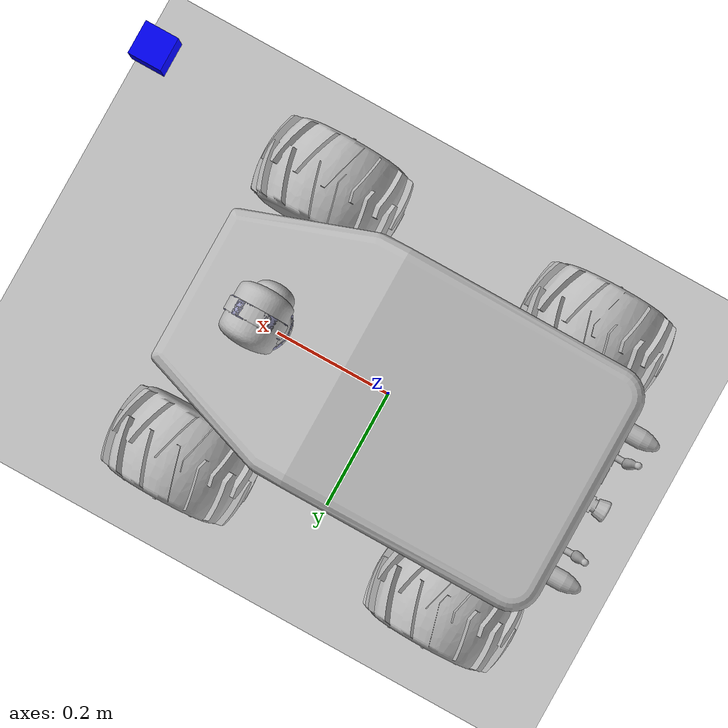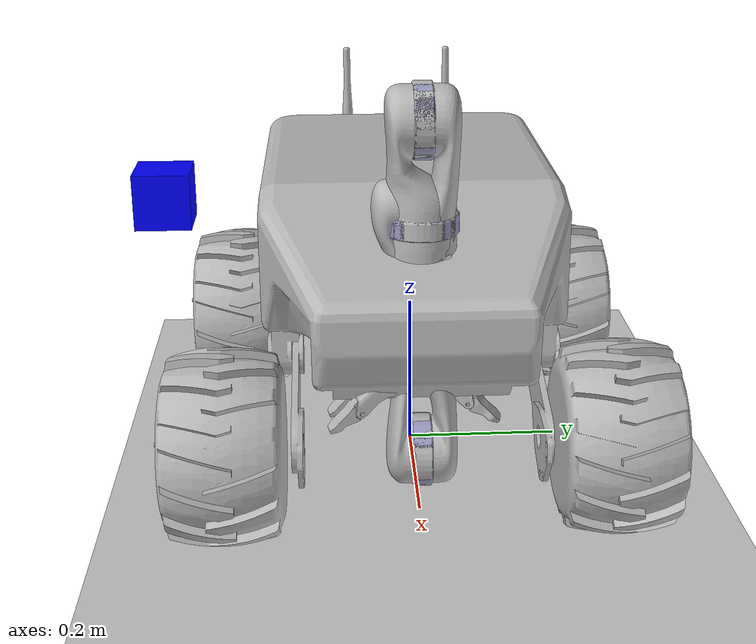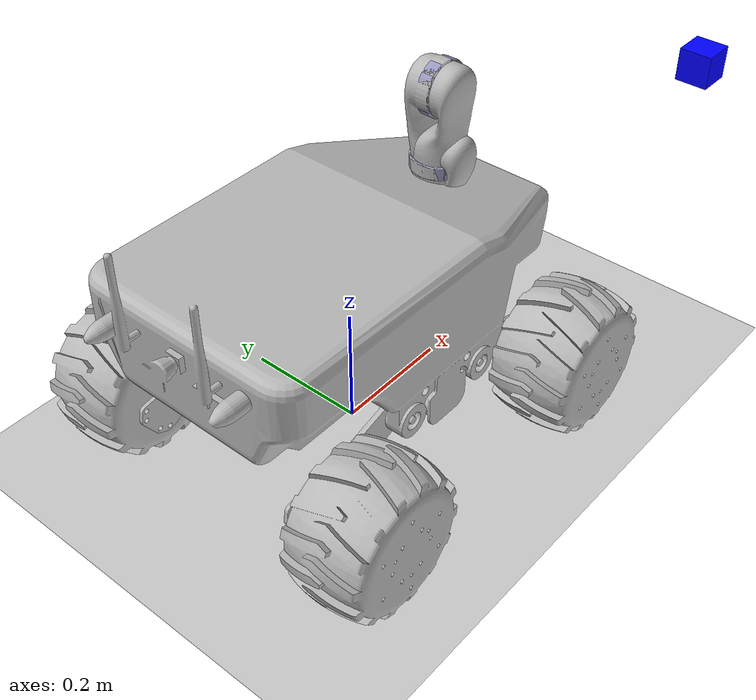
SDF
<?xml version="1.0"?>
<sdf version="1.9">
  <world name="moveit_follow_target_world">

    <!-- Physics -->
    <plugin filename="ignition-gazebo-physics-system" name="ignition::gazebo::systems::Physics">
      <engine>
        <filename>ignition-physics-dartsim-plugin</filename>
      </engine>
      <dart>
        <collision_detector>bullet</collision_detector>
      </dart>
    </plugin>
    <physics name="physics_config" type="dart">
      <max_step_size>0.001</max_step_size>
      <real_time_factor>1.0</real_time_factor>
    </physics>

    <!-- Scene -->
    <plugin filename="ignition-gazebo-scene-broadcaster-system" name="ignition::gazebo::systems::SceneBroadcaster">
    </plugin>
    <scene>
      <ambient>0.4 0.4 0.4</ambient>
      <grid>false</grid>
    </scene>

    <!-- User Commands (transform control) -->
    <plugin filename="ignition-gazebo-user-commands-system" name="ignition::gazebo::systems::UserCommands">
    </plugin>

    <!-- Illumination -->
    <light type="directional" name="sun">
      <cast_shadows>true</cast_shadows>
      <pose>0 0 10 0 0 0</pose>
      <diffuse>0.8 0.8 0.8 1</diffuse>
      <specular>0.2 0.2 0.2 1</specular>
      <attenuation>
        <range>1000</range>
        <constant>0.9</constant>
        <linear>0.01</linear>
        <quadratic>0.001</quadratic>
      </attenuation>
      <direction>-0.5 0.1 -0.9</direction>
    </light>

    <!-- Models -->
    <!-- Robot -->
    <include>
      <uri>model://lunalab_summit_xl_gen</uri>
      <pose>0 0 0 0 0 0</pose>
    </include>

    <!-- Ground -->
    <model name="ground_plane">
      <pose>0 0 0 0 0 0</pose>
      <static>true</static>
      <link name="ground_plane_link">
        <collision name="ground_plane_collision">
          <geometry>
            <plane>
              <normal>0 0 1</normal>
            </plane>
          </geometry>
        </collision>
        <visual name="ground_plane_visual">
          <geometry>
            <plane>
              <normal>0 0 1</normal>
              <size>10 10</size>
            </plane>
          </geometry>
          <material>
            <ambient>0.8 0.8 0.8 1</ambient>
            <diffuse>0.8 0.8 0.8 1</diffuse>
            <specular>0.8 0.8 0.8 1</specular>
          </material>
        </visual>
      </link>
    </model>

    <!-- Static target -->
    <model name="target">
      <static>true</static>
      <pose>0.5 -0.25 0.5 3.1415927 0 0</pose>
      <link name="target_link">
        <visual name="target_visual">
          <geometry>
            <box>
              <size>0.05 0.05 0.05</size>
            </box>
          </geometry>
          <material>
            <ambient>0 0 1 1</ambient>
            <diffuse>0 0 1 1</diffuse>
            <specular>0 0 1 1</specular>
          </material>
        </visual>
      </link>
      <!-- Pose publisher plugin, used to determine the target pose to reach -->
      <plugin filename="ignition-gazebo-pose-publisher-system" name="ignition::gazebo::systems::PosePublisher">
        <publish_nested_model_pose>true</publish_nested_model_pose>
        <publish_link_pose>false</publish_link_pose>
        <publish_collision_pose>false</publish_collision_pose>
        <publish_visual_pose>false</publish_visual_pose>
      </plugin>
    </model>
  </world>
</sdf>

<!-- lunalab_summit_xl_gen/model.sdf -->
<sdf version='1.9'>
  <model name='lunalab_summit_xl_gen'>
    <link name='robot_summit_xl_base_footprint'>
      <inertial>
        <pose>0.003747446190960834 0 0.1143260959704474 0 0 0</pose>
        <mass>25.46784</mass>
        <inertia>
          <ixx>1.417421164692676</ixx>
          <ixy>0.004</ixy>
          <ixz>-0.02206308944928192</ixz>
          <iyy>6.898533140266576</iyy>
          <iyz>0</iyz>
          <izz>6.1444862475739</izz>
        </inertia>
      </inertial>
      <collision name='robot_summit_xl_base_footprint_fixed_joint_lump__robot_summit_xl_base_link_collision'>
        <pose>0 0 0.11 0 0 0</pose>
        <geometry>
          <mesh>
            <scale>1 1 1</scale>
            <uri>meshes/summit_xl/collision/summit_xl_chassis.stl</uri>
          </mesh>
        </geometry>
      </collision>
      <collision name='robot_summit_xl_base_footprint_fixed_joint_lump__robot_j2s7s300_link_base_collision_1'>
        <pose>0.204 0 0.22 0 0 0</pose>
        <geometry>
          <mesh>
            <scale>1 1 1</scale>
            <uri>meshes/kinova/collision/base.stl</uri>
          </mesh>
        </geometry>
        <surface>
          <contact>
            <ode/>
          </contact>
          <friction>
            <ode>
              <mu>0.9</mu>
              <mu2>0.9</mu2>
            </ode>
          </friction>
        </surface>
      </collision>
      <visual name='robot_summit_xl_base_footprint_fixed_joint_lump__robot_summit_xl_base_link_visual'>
        <pose>0 0 0.11 0 0 0</pose>
        <geometry>
          <mesh>
            <scale>1 1 1</scale>
            <uri>meshes/summit_xl/visual/summit_xl_chassis.dae</uri>
          </mesh>
        </geometry>
      </visual>
      <visual name='robot_summit_xl_base_footprint_fixed_joint_lump__robot_j2s7s300_link_base_visual_1'>
        <pose>0.204 0 0.22 0 0 0</pose>
        <geometry>
          <mesh>
            <scale>1 1 1</scale>
            <uri>meshes/kinova/visual/base.dae</uri>
          </mesh>
        </geometry>
      </visual>
    </link>
    <joint name='robot_j2s7s300_joint_1' type='revolute'>
      <pose relative_to='robot_summit_xl_base_footprint'>0.204 0 0.37675 3.141592653589793 1.224646799147353e-16 3.141592653589793</pose>
      <parent>robot_summit_xl_base_footprint</parent>
      <child>robot_j2s7s300_link_1</child>
      <axis>
        <xyz>0 0 1</xyz>
        <limit>
          <lower>-6.283185307179586</lower>
          <upper>6.283185307179586</upper>
          <effort>40</effort>
          <velocity>0.6283185307179586</velocity>
        </limit>
        <dynamics>
          <damping>16</damping>
          <friction>0.6</friction>
          <spring_reference>0</spring_reference>
          <spring_stiffness>0</spring_stiffness>
        </dynamics>
      </axis>
    </joint>
    <link name='robot_j2s7s300_link_1'>
      <pose relative_to='robot_j2s7s300_joint_1'>0 0 0 0 0 0</pose>
      <inertial>
        <pose>0 -0.002 -0.0605 0 0 0</pose>
        <mass>0.7477</mass>
        <inertia>
          <ixx>0.001520323333333333</ixx>
          <ixy>0</ixy>
          <ixz>0</ixz>
          <iyy>0.001520323333333333</iyy>
          <iyz>0</iyz>
          <izz>0.00059816</izz>
        </inertia>
      </inertial>
      <collision name='robot_j2s7s300_link_1_collision'>
        <pose>0 0 0 0 0 0</pose>
        <geometry>
          <mesh>
            <scale>1 1 1</scale>
            <uri>meshes/kinova/collision/shoulder.stl</uri>
          </mesh>
        </geometry>
        <surface>
          <contact>
            <ode/>
          </contact>
          <friction>
            <ode>
              <mu>0.9</mu>
              <mu2>0.9</mu2>
            </ode>
          </friction>
        </surface>
      </collision>
      <visual name='robot_j2s7s300_link_1_visual'>
        <pose>0 0 0 0 0 0</pose>
        <geometry>
          <mesh>
            <scale>1 1 1</scale>
            <uri>meshes/kinova/visual/shoulder.dae</uri>
          </mesh>
        </geometry>
      </visual>
      <visual name='robot_j2s7s300_link_1_visual_1'>
        <pose>0 0 0 0 0 0</pose>
        <geometry>
          <mesh>
            <scale>1 1 1</scale>
            <uri>meshes/kinova/visual/ring_big.dae</uri>
          </mesh>
        </geometry>
      </visual>
    </link>
    <joint name='robot_j2s7s300_joint_2' type='revolute'>
      <pose relative_to='robot_j2s7s300_link_1'>0 0.0016 -0.11875 -1.570796326794896 0 3.141592653589793</pose>
      <parent>robot_j2s7s300_link_1</parent>
      <child>robot_j2s7s300_link_2</child>
      <axis>
        <xyz>0 0 1</xyz>
        <limit>
          <lower>0.8203047484373349</lower>
          <upper>5.462880558742252</upper>
          <effort>80</effort>
          <velocity>0.6283185307179586</velocity>
        </limit>
        <dynamics>
          <damping>8.5</damping>
          <friction>0.9</friction>
          <spring_reference>0</spring_reference>
          <spring_stiffness>0</spring_stiffness>
        </dynamics>
      </axis>
    </joint>
    <link name='robot_j2s7s300_link_2'>
      <pose relative_to='robot_j2s7s300_joint_2'>0 0 0 0 0 0</pose>
      <inertial>
        <pose>0 -0.103563213 0 0 0 0</pose>
        <mass>0.8447</mass>
        <inertia>
          <ixx>0.0024707475</ixx>
          <ixy>0</ixy>
          <ixz>0</ixz>
          <iyy>0.000380115</iyy>
          <iyz>0</iyz>
          <izz>0.0024707475</izz>
        </inertia>
      </inertial>
      <collision name='robot_j2s7s300_link_2_collision'>
        <pose>0 0 0 0 0 0</pose>
        <geometry>
          <mesh>
            <scale>1 1 1</scale>
            <uri>meshes/kinova/collision/arm_half_1.stl</uri>
          </mesh>
        </geometry>
        <surface>
          <contact>
            <ode/>
          </contact>
          <friction>
            <ode>
              <mu>0.9</mu>
              <mu2>0.9</mu2>
            </ode>
          </friction>
        </surface>
      </collision>
      <visual name='robot_j2s7s300_link_2_visual'>
        <pose>0 0 0 0 0 0</pose>
        <geometry>
          <mesh>
            <scale>1 1 1</scale>
            <uri>meshes/kinova/visual/arm_half_1.dae</uri>
          </mesh>
        </geometry>
      </visual>
      <visual name='robot_j2s7s300_link_2_visual_1'>
        <pose>0 0 0 0 0 0</pose>
        <geometry>
          <mesh>
            <scale>1 1 1</scale>
            <uri>meshes/kinova/visual/ring_big.dae</uri>
          </mesh>
        </geometry>
      </visual>
    </link>
    <joint name='robot_j2s7s300_joint_3' type='revolute'>
      <pose relative_to='robot_j2s7s300_link_2'>0 -0.205 0 -1.570796326794896 0 0</pose>
      <parent>robot_j2s7s300_link_2</parent>
      <child>robot_j2s7s300_link_3</child>
      <axis>
        <xyz>0 0 1</xyz>
        <limit>
          <lower>-6.283185307179586</lower>
          <upper>6.283185307179586</upper>
          <effort>40</effort>
          <velocity>0.6283185307179586</velocity>
        </limit>
        <dynamics>
          <damping>7.5</damping>
          <friction>0.75</friction>
          <spring_reference>0</spring_reference>
          <spring_stiffness>0</spring_stiffness>
        </dynamics>
      </axis>
    </joint>
    <link name='robot_j2s7s300_link_3'>
      <pose relative_to='robot_j2s7s300_joint_3'>0 0 0 0 0 0</pose>
      <inertial>
        <pose>0 0 -0.1022447445 0 0 0</pose>
        <mass>0.8447</mass>
        <inertia>
          <ixx>0.0024707475</ixx>
          <ixy>0</ixy>
          <ixz>0</ixz>
          <iyy>0.0024707475</iyy>
          <iyz>0</iyz>
          <izz>0.000380115</izz>
        </inertia>
      </inertial>
      <collision name='robot_j2s7s300_link_3_collision'>
        <pose>0 0 0 0 0 0</pose>
        <geometry>
          <mesh>
            <scale>1 1 1</scale>
            <uri>meshes/kinova/collision/arm_half_2.stl</uri>
          </mesh>
        </geometry>
        <surface>
          <contact>
            <ode/>
          </contact>
          <friction>
            <ode>
              <mu>0.9</mu>
              <mu2>0.9</mu2>
            </ode>
          </friction>
        </surface>
      </collision>
      <visual name='robot_j2s7s300_link_3_visual'>
        <pose>0 0 0 0 0 0</pose>
        <geometry>
          <mesh>
            <scale>1 1 1</scale>
            <uri>meshes/kinova/visual/arm_half_2.dae</uri>
          </mesh>
        </geometry>
      </visual>
      <visual name='robot_j2s7s300_link_3_visual_1'>
        <pose>0 0 0 0 0 0</pose>
        <geometry>
          <mesh>
            <scale>1 1 1</scale>
            <uri>meshes/kinova/visual/ring_big.dae</uri>
          </mesh>
        </geometry>
      </visual>
    </link>
    <joint name='robot_j2s7s300_joint_4' type='revolute'>
      <pose relative_to='robot_j2s7s300_link_3'>0 0 -0.205 1.570796326794896 0 3.141592653589793</pose>
      <parent>robot_j2s7s300_link_3</parent>
      <child>robot_j2s7s300_link_4</child>
      <axis>
        <xyz>0 0 1</xyz>
        <limit>
          <lower>0.5235987755982988</lower>
          <upper>5.759586531581287</upper>
          <effort>40</effort>
          <velocity>0.6283185307179586</velocity>
        </limit>
        <dynamics>
          <damping>6.5</damping>
          <friction>0.95</friction>
          <spring_reference>0</spring_reference>
          <spring_stiffness>0</spring_stiffness>
        </dynamics>
      </axis>
    </joint>
    <link name='robot_j2s7s300_link_4'>
      <pose relative_to='robot_j2s7s300_joint_4'>0 0 0 0 0 0</pose>
      <inertial>
        <pose>0 0.081 -0.0086 0 0 0</pose>
        <mass>0.6763</mass>
        <inertia>
          <ixx>0.00142023</ixx>
          <ixy>0</ixy>
          <ixz>0</ixz>
          <iyy>0.000304335</iyy>
          <iyz>0</iyz>
          <izz>0.00142023</izz>
        </inertia>
      </inertial>
      <collision name='robot_j2s7s300_link_4_collision'>
        <pose>0 0 0 0 0 0</pose>
        <geometry>
          <mesh>
            <scale>1 1 1</scale>
            <uri>meshes/kinova/collision/forearm.stl</uri>
          </mesh>
        </geometry>
        <surface>
          <contact>
            <ode/>
          </contact>
          <friction>
            <ode>
              <mu>0.9</mu>
              <mu2>0.9</mu2>
            </ode>
          </friction>
        </surface>
      </collision>
      <visual name='robot_j2s7s300_link_4_visual'>
        <pose>0 0 0 0 0 0</pose>
        <geometry>
          <mesh>
            <scale>1 1 1</scale>
            <uri>meshes/kinova/visual/forearm.dae</uri>
          </mesh>
        </geometry>
      </visual>
      <visual name='robot_j2s7s300_link_4_visual_1'>
        <pose>0 0 0 0 0 0</pose>
        <geometry>
          <mesh>
            <scale>1 1 1</scale>
            <uri>meshes/kinova/visual/ring_big.dae</uri>
          </mesh>
        </geometry>
      </visual>
    </link>
    <joint name='robot_j2s7s300_joint_5' type='revolute'>
      <pose relative_to='robot_j2s7s300_link_4'>0 0.2073 -0.0114 -1.570796326794896 0 3.141592653589793</pose>
      <parent>robot_j2s7s300_link_4</parent>
      <child>robot_j2s7s300_link_5</child>
      <axis>
        <xyz>0 0 1</xyz>
        <limit>
          <lower>-6.283185307179586</lower>
          <upper>6.283185307179586</upper>
          <effort>20</effort>
          <velocity>0.8377580409572781</velocity>
        </limit>
        <dynamics>
          <damping>4.5</damping>
          <friction>0.35</friction>
          <spring_reference>0</spring_reference>
          <spring_stiffness>0</spring_stiffness>
        </dynamics>
      </axis>
    </joint>
    <link name='robot_j2s7s300_link_5'>
      <pose relative_to='robot_j2s7s300_joint_5'>0 0 0 0 0 0</pose>
      <inertial>
        <pose>0 0.0028848942 -0.0541932613 0 0 0</pose>
        <mass>0.463</mass>
        <inertia>
          <ixx>0.0004321333333333334</ixx>
          <ixy>0</ixy>
          <ixz>0</ixz>
          <iyy>0.0004321333333333334</iyy>
          <iyz>0</iyz>
          <izz>9.260000000000001e-05</izz>
        </inertia>
      </inertial>
      <collision name='robot_j2s7s300_link_5_collision'>
        <pose>0 0 0 0 0 0</pose>
        <geometry>
          <mesh>
            <scale>1 1 1</scale>
            <uri>meshes/kinova/collision/wrist_spherical_1.stl</uri>
          </mesh>
        </geometry>
        <surface>
          <contact>
            <ode/>
          </contact>
          <friction>
            <ode>
              <mu>0.9</mu>
              <mu2>0.9</mu2>
            </ode>
          </friction>
        </surface>
      </collision>
      <visual name='robot_j2s7s300_link_5_visual'>
        <pose>0 0 0 0 0 0</pose>
        <geometry>
          <mesh>
            <scale>1 1 1</scale>
            <uri>meshes/kinova/visual/wrist_spherical_1.dae</uri>
          </mesh>
        </geometry>
      </visual>
      <visual name='robot_j2s7s300_link_5_visual_1'>
        <pose>0 0 0 0 0 0</pose>
        <geometry>
          <mesh>
            <scale>1 1 1</scale>
            <uri>meshes/kinova/visual/ring_small.dae</uri>
          </mesh>
        </geometry>
      </visual>
    </link>
    <joint name='robot_j2s7s300_joint_6' type='revolute'>
      <pose relative_to='robot_j2s7s300_link_5'>0 0 -0.10375 1.570796326794896 0 3.141592653589793</pose>
      <parent>robot_j2s7s300_link_5</parent>
      <child>robot_j2s7s300_link_6</child>
      <axis>
        <xyz>0 0 1</xyz>
        <limit>
          <lower>1.134464013796314</lower>
          <upper>5.148721293383272</upper>
          <effort>20</effort>
          <velocity>0.8377580409572781</velocity>
        </limit>
        <dynamics>
          <damping>4</damping>
          <friction>0.3</friction>
          <spring_reference>0</spring_reference>
          <spring_stiffness>0</spring_stiffness>
        </dynamics>
      </axis>
    </joint>
    <link name='robot_j2s7s300_link_6'>
      <pose relative_to='robot_j2s7s300_joint_6'>0 0 0 0 0 0</pose>
      <inertial>
        <pose>0 0.0497208855 -0.0028562765 0 0 0</pose>
        <mass>0.463</mass>
        <inertia>
          <ixx>0.0004321333333333334</ixx>
          <ixy>0</ixy>
          <ixz>0</ixz>
          <iyy>9.260000000000001e-05</iyy>
          <iyz>0</iyz>
          <izz>0.0004321333333333334</izz>
        </inertia>
      </inertial>
      <collision name='robot_j2s7s300_link_6_collision'>
        <pose>0 0 0 0 0 0</pose>
        <geometry>
          <mesh>
            <scale>1 1 1</scale>
            <uri>meshes/kinova/collision/wrist_spherical_2.stl</uri>
          </mesh>
        </geometry>
        <surface>
          <contact>
            <ode/>
          </contact>
          <friction>
            <ode>
              <mu>0.9</mu>
              <mu2>0.9</mu2>
            </ode>
          </friction>
        </surface>
      </collision>
      <visual name='robot_j2s7s300_link_6_visual'>
        <pose>0 0 0 0 0 0</pose>
        <geometry>
          <mesh>
            <scale>1 1 1</scale>
            <uri>meshes/kinova/visual/wrist_spherical_2.dae</uri>
          </mesh>
        </geometry>
      </visual>
      <visual name='robot_j2s7s300_link_6_visual_1'>
        <pose>0 0 0 0 0 0</pose>
        <geometry>
          <mesh>
            <scale>1 1 1</scale>
            <uri>meshes/kinova/visual/ring_small.dae</uri>
          </mesh>
        </geometry>
      </visual>
    </link>
    <joint name='robot_j2s7s300_joint_7' type='revolute'>
      <pose relative_to='robot_j2s7s300_link_6'>0 0.10375 0 -1.570796326794896 0 3.141592653589793</pose>
      <parent>robot_j2s7s300_link_6</parent>
      <child>robot_j2s7s300_link_7</child>
      <axis>
        <xyz>0 0 1</xyz>
        <limit>
          <lower>-6.283185307179586</lower>
          <upper>6.283185307179586</upper>
          <effort>20</effort>
          <velocity>0.8377580409572781</velocity>
        </limit>
        <dynamics>
          <damping>3.5</damping>
          <friction>0.2</friction>
          <spring_reference>0</spring_reference>
          <spring_stiffness>0</spring_stiffness>
        </dynamics>
      </axis>
    </joint>
    <link name='robot_j2s7s300_link_7'>
      <pose relative_to='robot_j2s7s300_joint_7'>0 0 0 0 0 0</pose>
      <inertial>
        <pose>0 0 -0.06 0 0 0</pose>
        <mass>0.99</mass>
        <inertia>
          <ixx>0.0003453249999999999</ixx>
          <ixy>0</ixy>
          <ixz>0</ixz>
          <iyy>0.0003453249999999999</iyy>
          <iyz>0</iyz>
          <izz>0.0005815999999999999</izz>
        </inertia>
      </inertial>
      <collision name='robot_j2s7s300_link_7_collision'>
        <pose>0 0 0 0 0 0</pose>
        <geometry>
          <mesh>
            <scale>1 1 1</scale>
            <uri>meshes/kinova/collision/hand_3finger.stl</uri>
          </mesh>
        </geometry>
        <surface>
          <contact>
            <ode/>
          </contact>
          <friction>
            <ode>
              <mu>0.9</mu>
              <mu2>0.9</mu2>
            </ode>
          </friction>
        </surface>
      </collision>
      <visual name='robot_j2s7s300_link_7_visual'>
        <pose>0 0 0 0 0 0</pose>
        <geometry>
          <mesh>
            <scale>1 1 1</scale>
            <uri>meshes/kinova/visual/hand_3finger.dae</uri>
          </mesh>
        </geometry>
      </visual>
      <visual name='robot_j2s7s300_link_7_visual_1'>
        <pose>0 0 0 0 0 0</pose>
        <geometry>
          <mesh>
            <scale>1 1 1</scale>
            <uri>meshes/kinova/visual/ring_small.dae</uri>
          </mesh>
        </geometry>
      </visual>
    </link>
    <joint name='robot_j2s7s300_joint_finger_1' type='revolute'>
      <pose relative_to='robot_j2s7s300_link_7'>0.00279 0.03126 -0.11467 -1.570796326794896 0.6492624817418907 1.359611487303583</pose>
      <parent>robot_j2s7s300_link_7</parent>
      <child>robot_j2s7s300_link_finger_1</child>
      <axis>
        <xyz>0 0 1</xyz>
        <limit>
          <lower>0</lower>
          <upper>1.51</upper>
          <effort>2</effort>
          <velocity>1</velocity>
        </limit>
        <dynamics>
          <damping>0.5</damping>
          <friction>0.05</friction>
          <spring_reference>0</spring_reference>
          <spring_stiffness>0</spring_stiffness>
        </dynamics>
      </axis>
    </joint>
    <link name='robot_j2s7s300_link_finger_1'>
      <pose relative_to='robot_j2s7s300_joint_finger_1'>0 0 0 0 0 0</pose>
      <inertial>
        <pose>0.022 0 0 0 0 0</pose>
        <mass>0.01</mass>
        <inertia>
          <ixx>7.9e-07</ixx>
          <ixy>0</ixy>
          <ixz>0</ixz>
          <iyy>7.9e-07</iyy>
          <iyz>0</iyz>
          <izz>8e-08</izz>
        </inertia>
      </inertial>
      <collision name='robot_j2s7s300_link_finger_1_collision'>
        <pose>0 0 0 0 0 0</pose>
        <geometry>
          <mesh>
            <scale>1 1 1</scale>
            <uri>meshes/kinova/collision/finger_proximal.stl</uri>
          </mesh>
        </geometry>
        <surface>
          <contact>
            <ode/>
          </contact>
          <friction>
            <ode>
              <mu>1.6</mu>
              <mu2>1.6</mu2>
            </ode>
          </friction>
        </surface>
      </collision>
      <visual name='robot_j2s7s300_link_finger_1_visual'>
        <pose>0 0 0 0 0 0</pose>
        <geometry>
          <mesh>
            <scale>1 1 1</scale>
            <uri>meshes/kinova/visual/finger_proximal.dae</uri>
          </mesh>
        </geometry>
      </visual>
    </link>
    <joint name='robot_j2s7s300_joint_finger_tip_1' type='revolute'>
      <pose relative_to='robot_j2s7s300_link_finger_1'>0.044 -0.003 0 0 0 0</pose>
      <parent>robot_j2s7s300_link_finger_1</parent>
      <child>robot_j2s7s300_link_finger_tip_1</child>
      <axis>
        <xyz>0 0 1</xyz>
        <limit>
          <lower>0</lower>
          <upper>2</upper>
          <effort>2</effort>
          <velocity>1</velocity>
        </limit>
        <dynamics>
          <damping>0.05</damping>
          <friction>0.01</friction>
          <spring_reference>0</spring_reference>
          <spring_stiffness>0.2</spring_stiffness>
        </dynamics>
      </axis>
      <physics>
        <ode>
          <limit>
            <cfm>0.0</cfm>
            <erp>0.2</erp>
          </limit>
        </ode>
      </physics>
    </joint>
    <link name='robot_j2s7s300_link_finger_tip_1'>
      <pose relative_to='robot_j2s7s300_joint_finger_tip_1'>0 0 0 0 0 0</pose>
      <inertial>
        <pose>0.022 0 0 0 0 0</pose>
        <mass>0.01</mass>
        <inertia>
          <ixx>7.9e-07</ixx>
          <ixy>0</ixy>
          <ixz>0</ixz>
          <iyy>7.9e-07</iyy>
          <iyz>0</iyz>
          <izz>8e-08</izz>
        </inertia>
      </inertial>
      <collision name='robot_j2s7s300_link_finger_tip_1_collision'>
        <pose>0 0 0 0 0 0</pose>
        <geometry>
          <mesh>
            <scale>1 1 1</scale>
            <uri>meshes/kinova/collision/finger_distal.stl</uri>
          </mesh>
        </geometry>
        <surface>
          <contact>
            <ode/>
          </contact>
          <friction>
            <ode>
              <mu>1.6</mu>
              <mu2>1.6</mu2>
            </ode>
          </friction>
        </surface>
      </collision>
      <visual name='robot_j2s7s300_link_finger_tip_1_visual'>
        <pose>0 0 0 0 0 0</pose>
        <geometry>
          <mesh>
            <scale>1 1 1</scale>
            <uri>meshes/kinova/visual/finger_distal.dae</uri>
          </mesh>
        </geometry>
      </visual>
    </link>
    <joint name='robot_j2s7s300_joint_finger_2' type='revolute'>
      <pose relative_to='robot_j2s7s300_link_7'>0.02226 -0.02707 -0.11482 -1.570796326794897 0.6492624817418907 -1.386140491933897</pose>
      <parent>robot_j2s7s300_link_7</parent>
      <child>robot_j2s7s300_link_finger_2</child>
      <axis>
        <xyz>0 0 1</xyz>
        <limit>
          <lower>0</lower>
          <upper>1.51</upper>
          <effort>2</effort>
          <velocity>1</velocity>
        </limit>
        <dynamics>
          <damping>0.5</damping>
          <friction>0.05</friction>
          <spring_reference>0</spring_reference>
          <spring_stiffness>0</spring_stiffness>
        </dynamics>
      </axis>
    </joint>
    <link name='robot_j2s7s300_link_finger_2'>
      <pose relative_to='robot_j2s7s300_joint_finger_2'>0 0 0 0 0 0</pose>
      <inertial>
        <pose>0.022 0 0 0 0 0</pose>
        <mass>0.01</mass>
        <inertia>
          <ixx>7.9e-07</ixx>
          <ixy>0</ixy>
          <ixz>0</ixz>
          <iyy>7.9e-07</iyy>
          <iyz>0</iyz>
          <izz>8e-08</izz>
        </inertia>
      </inertial>
      <collision name='robot_j2s7s300_link_finger_2_collision'>
        <pose>0 0 0 0 0 0</pose>
        <geometry>
          <mesh>
            <scale>1 1 1</scale>
            <uri>meshes/kinova/collision/finger_proximal.stl</uri>
          </mesh>
        </geometry>
        <surface>
          <contact>
            <ode/>
          </contact>
          <friction>
            <ode>
              <mu>1.6</mu>
              <mu2>1.6</mu2>
            </ode>
          </friction>
        </surface>
      </collision>
      <visual name='robot_j2s7s300_link_finger_2_visual'>
        <pose>0 0 0 0 0 0</pose>
        <geometry>
          <mesh>
            <scale>1 1 1</scale>
            <uri>meshes/kinova/visual/finger_proximal.dae</uri>
          </mesh>
        </geometry>
      </visual>
    </link>
    <joint name='robot_j2s7s300_joint_finger_tip_2' type='revolute'>
      <pose relative_to='robot_j2s7s300_link_finger_2'>0.044 -0.003 0 0 0 0</pose>
      <parent>robot_j2s7s300_link_finger_2</parent>
      <child>robot_j2s7s300_link_finger_tip_2</child>
      <axis>
        <xyz>0 0 1</xyz>
        <limit>
          <lower>0</lower>
          <upper>2</upper>
          <effort>2</effort>
          <velocity>1</velocity>
        </limit>
        <dynamics>
          <damping>0.05</damping>
          <friction>0.01</friction>
          <spring_reference>0</spring_reference>
          <spring_stiffness>0.2</spring_stiffness>
        </dynamics>
      </axis>
      <physics>
        <ode>
          <limit>
            <cfm>0.0</cfm>
            <erp>0.2</erp>
          </limit>
        </ode>
      </physics>
    </joint>
    <link name='robot_j2s7s300_link_finger_tip_2'>
      <pose relative_to='robot_j2s7s300_joint_finger_tip_2'>0 0 0 0 0 0</pose>
      <inertial>
        <pose>0.022 0 0 0 0 0</pose>
        <mass>0.01</mass>
        <inertia>
          <ixx>7.9e-07</ixx>
          <ixy>0</ixy>
          <ixz>0</ixz>
          <iyy>7.9e-07</iyy>
          <iyz>0</iyz>
          <izz>8e-08</izz>
        </inertia>
      </inertial>
      <collision name='robot_j2s7s300_link_finger_tip_2_collision'>
        <pose>0 0 0 0 0 0</pose>
        <geometry>
          <mesh>
            <scale>1 1 1</scale>
            <uri>meshes/kinova/collision/finger_distal.stl</uri>
          </mesh>
        </geometry>
        <surface>
          <contact>
            <ode/>
          </contact>
          <friction>
            <ode>
              <mu>1.6</mu>
              <mu2>1.6</mu2>
            </ode>
          </friction>
        </surface>
      </collision>
      <visual name='robot_j2s7s300_link_finger_tip_2_visual'>
        <pose>0 0 0 0 0 0</pose>
        <geometry>
          <mesh>
            <scale>1 1 1</scale>
            <uri>meshes/kinova/visual/finger_distal.dae</uri>
          </mesh>
        </geometry>
      </visual>
    </link>
    <joint name='robot_j2s7s300_joint_finger_3' type='revolute'>
      <pose relative_to='robot_j2s7s300_link_7'>-0.02226 -0.02707 -0.11482 -1.570796326794897 0.6492624817418907 -1.386140491933897</pose>
      <parent>robot_j2s7s300_link_7</parent>
      <child>robot_j2s7s300_link_finger_3</child>
      <axis>
        <xyz>0 0 1</xyz>
        <limit>
          <lower>0</lower>
          <upper>1.51</upper>
          <effort>2</effort>
          <velocity>1</velocity>
        </limit>
        <dynamics>
          <damping>0.5</damping>
          <friction>0.05</friction>
          <spring_reference>0</spring_reference>
          <spring_stiffness>0</spring_stiffness>
        </dynamics>
      </axis>
    </joint>
    <link name='robot_j2s7s300_link_finger_3'>
      <pose relative_to='robot_j2s7s300_joint_finger_3'>0 0 0 0 0 0</pose>
      <inertial>
        <pose>0.022 0 0 0 0 0</pose>
        <mass>0.01</mass>
        <inertia>
          <ixx>7.9e-07</ixx>
          <ixy>0</ixy>
          <ixz>0</ixz>
          <iyy>7.9e-07</iyy>
          <iyz>0</iyz>
          <izz>8e-08</izz>
        </inertia>
      </inertial>
      <collision name='robot_j2s7s300_link_finger_3_collision'>
        <pose>0 0 0 0 0 0</pose>
        <geometry>
          <mesh>
            <scale>1 1 1</scale>
            <uri>meshes/kinova/collision/finger_proximal.stl</uri>
          </mesh>
        </geometry>
        <surface>
          <contact>
            <ode/>
          </contact>
          <friction>
            <ode>
              <mu>1.6</mu>
              <mu2>1.6</mu2>
            </ode>
          </friction>
        </surface>
      </collision>
      <visual name='robot_j2s7s300_link_finger_3_visual'>
        <pose>0 0 0 0 0 0</pose>
        <geometry>
          <mesh>
            <scale>1 1 1</scale>
            <uri>meshes/kinova/visual/finger_proximal.dae</uri>
          </mesh>
        </geometry>
      </visual>
    </link>
    <joint name='robot_j2s7s300_joint_finger_tip_3' type='revolute'>
      <pose relative_to='robot_j2s7s300_link_finger_3'>0.044 -0.003 0 0 0 0</pose>
      <parent>robot_j2s7s300_link_finger_3</parent>
      <child>robot_j2s7s300_link_finger_tip_3</child>
      <axis>
        <xyz>0 0 1</xyz>
        <limit>
          <lower>0</lower>
          <upper>2</upper>
          <effort>2</effort>
          <velocity>1</velocity>
        </limit>
        <dynamics>
          <damping>0.05</damping>
          <friction>0.01</friction>
          <spring_reference>0</spring_reference>
          <spring_stiffness>0.2</spring_stiffness>
        </dynamics>
      </axis>
      <physics>
        <ode>
          <limit>
            <cfm>0.0</cfm>
            <erp>0.2</erp>
          </limit>
        </ode>
      </physics>
    </joint>
    <link name='robot_j2s7s300_link_finger_tip_3'>
      <pose relative_to='robot_j2s7s300_joint_finger_tip_3'>0 0 0 0 0 0</pose>
      <inertial>
        <pose>0.022 0 0 0 0 0</pose>
        <mass>0.01</mass>
        <inertia>
          <ixx>7.9e-07</ixx>
          <ixy>0</ixy>
          <ixz>0</ixz>
          <iyy>7.9e-07</iyy>
          <iyz>0</iyz>
          <izz>8e-08</izz>
        </inertia>
      </inertial>
      <collision name='robot_j2s7s300_link_finger_tip_3_collision'>
        <pose>0 0 0 0 0 0</pose>
        <geometry>
          <mesh>
            <scale>1 1 1</scale>
            <uri>meshes/kinova/collision/finger_distal.stl</uri>
          </mesh>
        </geometry>
        <surface>
          <contact>
            <ode/>
          </contact>
          <friction>
            <ode>
              <mu>1.6</mu>
              <mu2>1.6</mu2>
            </ode>
          </friction>
        </surface>
      </collision>
      <visual name='robot_j2s7s300_link_finger_tip_3_visual'>
        <pose>0 0 0 0 0 0</pose>
        <geometry>
          <mesh>
            <scale>1 1 1</scale>
            <uri>meshes/kinova/visual/finger_distal.dae</uri>
          </mesh>
        </geometry>
      </visual>
    </link>
    <joint name='robot_summit_xl_back_left_wheel_joint' type='revolute'>
      <pose relative_to='robot_summit_xl_base_footprint'>-0.229 0.235 0.11 0 0 0</pose>
      <parent>robot_summit_xl_base_footprint</parent>
      <child>robot_summit_xl_back_left_wheel</child>
      <axis>
        <xyz>0 1 0</xyz>
        <limit>
          <effort>100</effort>
          <velocity>100</velocity>
          <lower>-1e16</lower>
          <upper>1e16</upper>
        </limit>
        <dynamics>
          <damping>0.035</damping>
          <friction>0.0005</friction>
          <spring_reference>0</spring_reference>
          <spring_stiffness>0</spring_stiffness>
        </dynamics>
      </axis>
    </joint>
    <link name='robot_summit_xl_back_left_wheel'>
      <pose relative_to='robot_summit_xl_back_left_wheel_joint'>0 0 0 0 0 0</pose>
      <inertial>
        <pose>0 0 0 0 0 0</pose>
        <mass>6.5</mass>
        <inertia>
          <ixx>0.03185</ixx>
          <ixy>0</ixy>
          <ixz>0</ixz>
          <iyy>0.039325</iyy>
          <iyz>0</iyz>
          <izz>0.03185</izz>
        </inertia>
      </inertial>
      <collision name='robot_summit_xl_back_left_wheel_collision'>
        <pose>0 0 0 1.570796326794896 0 0</pose>
        <geometry>
          <cylinder>
            <length>0.15</length>
            <radius>0.11</radius>
          </cylinder>
        </geometry>
        <surface>
          <contact>
            <ode/>
          </contact>
          <friction>
            <ode>
              <mu>1.9</mu>
              <mu2>1.7</mu2>
              <fdir1>1 0 0</fdir1>
            </ode>
          </friction>
        </surface>
      </collision>
      <visual name='robot_summit_xl_back_left_wheel_visual'>
        <pose>0 0 0 0 0 0</pose>
        <geometry>
          <mesh>
            <scale>1 1 1</scale>
            <uri>meshes/summit_xl/visual/rubber_wheel_left.dae</uri>
          </mesh>
        </geometry>
      </visual>
    </link>
    <joint name='robot_summit_xl_back_right_wheel_joint' type='revolute'>
      <pose relative_to='robot_summit_xl_base_footprint'>-0.229 -0.235 0.11 0 0 0</pose>
      <parent>robot_summit_xl_base_footprint</parent>
      <child>robot_summit_xl_back_right_wheel</child>
      <axis>
        <xyz>0 1 0</xyz>
        <limit>
          <effort>100</effort>
          <velocity>100</velocity>
          <lower>-1e16</lower>
          <upper>1e16</upper>
        </limit>
        <dynamics>
          <damping>0.035</damping>
          <friction>0.0005</friction>
          <spring_reference>0</spring_reference>
          <spring_stiffness>0</spring_stiffness>
        </dynamics>
      </axis>
    </joint>
    <link name='robot_summit_xl_back_right_wheel'>
      <pose relative_to='robot_summit_xl_back_right_wheel_joint'>0 0 0 0 0 0</pose>
      <inertial>
        <pose>0 0 0 0 0 0</pose>
        <mass>6.5</mass>
        <inertia>
          <ixx>0.03185</ixx>
          <ixy>0</ixy>
          <ixz>0</ixz>
          <iyy>0.039325</iyy>
          <iyz>0</iyz>
          <izz>0.03185</izz>
        </inertia>
      </inertial>
      <collision name='robot_summit_xl_back_right_wheel_collision'>
        <pose>0 0 0 1.570796326794896 0 0</pose>
        <geometry>
          <cylinder>
            <length>0.15</length>
            <radius>0.11</radius>
          </cylinder>
        </geometry>
        <surface>
          <contact>
            <ode/>
          </contact>
          <friction>
            <ode>
              <mu>1.9</mu>
              <mu2>1.7</mu2>
              <fdir1>1 0 0</fdir1>
            </ode>
          </friction>
        </surface>
      </collision>
      <visual name='robot_summit_xl_back_right_wheel_visual'>
        <pose>0 0 0 0 0 0</pose>
        <geometry>
          <mesh>
            <scale>1 1 1</scale>
            <uri>meshes/summit_xl/visual/rubber_wheel_right.dae</uri>
          </mesh>
        </geometry>
      </visual>
    </link>
    <joint name='robot_summit_xl_front_left_wheel_joint' type='revolute'>
      <pose relative_to='robot_summit_xl_base_footprint'>0.229 0.235 0.11 0 0 0</pose>
      <parent>robot_summit_xl_base_footprint</parent>
      <child>robot_summit_xl_front_left_wheel</child>
      <axis>
        <xyz>0 1 0</xyz>
        <limit>
          <effort>100</effort>
          <velocity>100</velocity>
          <lower>-1e16</lower>
          <upper>1e16</upper>
        </limit>
        <dynamics>
          <damping>0.035</damping>
          <friction>0.0005</friction>
          <spring_reference>0</spring_reference>
          <spring_stiffness>0</spring_stiffness>
        </dynamics>
      </axis>
    </joint>
    <link name='robot_summit_xl_front_left_wheel'>
      <pose relative_to='robot_summit_xl_front_left_wheel_joint'>0 0 0 0 0 0</pose>
      <inertial>
        <pose>0 0 0 0 0 0</pose>
        <mass>6.5</mass>
        <inertia>
          <ixx>0.03185</ixx>
          <ixy>0</ixy>
          <ixz>0</ixz>
          <iyy>0.039325</iyy>
          <iyz>0</iyz>
          <izz>0.03185</izz>
        </inertia>
      </inertial>
      <collision name='robot_summit_xl_front_left_wheel_collision'>
        <pose>0 0 0 1.570796326794896 0 0</pose>
        <geometry>
          <cylinder>
            <length>0.15</length>
            <radius>0.11</radius>
          </cylinder>
        </geometry>
        <surface>
          <contact>
            <ode/>
          </contact>
          <friction>
            <ode>
              <mu>1.9</mu>
              <mu2>1.7</mu2>
              <fdir1>1 0 0</fdir1>
            </ode>
          </friction>
        </surface>
      </collision>
      <visual name='robot_summit_xl_front_left_wheel_visual'>
        <pose>0 0 0 0 0 0</pose>
        <geometry>
          <mesh>
            <scale>1 1 1</scale>
            <uri>meshes/summit_xl/visual/rubber_wheel_left.dae</uri>
          </mesh>
        </geometry>
      </visual>
    </link>
    <joint name='robot_summit_xl_front_right_wheel_joint' type='revolute'>
      <pose relative_to='robot_summit_xl_base_footprint'>0.229 -0.235 0.11 0 0 0</pose>
      <parent>robot_summit_xl_base_footprint</parent>
      <child>robot_summit_xl_front_right_wheel</child>
      <axis>
        <xyz>0 1 0</xyz>
        <limit>
          <effort>100</effort>
          <velocity>100</velocity>
          <lower>-1e16</lower>
          <upper>1e16</upper>
        </limit>
        <dynamics>
          <damping>0.035</damping>
          <friction>0.0005</friction>
          <spring_reference>0</spring_reference>
          <spring_stiffness>0</spring_stiffness>
        </dynamics>
      </axis>
    </joint>
    <link name='robot_summit_xl_front_right_wheel'>
      <pose relative_to='robot_summit_xl_front_right_wheel_joint'>0 0 0 0 0 0</pose>
      <inertial>
        <pose>0 0 0 0 0 0</pose>
        <mass>6.5</mass>
        <inertia>
          <ixx>0.03185</ixx>
          <ixy>0</ixy>
          <ixz>0</ixz>
          <iyy>0.039325</iyy>
          <iyz>0</iyz>
          <izz>0.03185</izz>
        </inertia>
      </inertial>
      <collision name='robot_summit_xl_front_right_wheel_collision'>
        <pose>0 0 0 1.570796326794896 0 0</pose>
        <geometry>
          <cylinder>
            <length>0.15</length>
            <radius>0.11</radius>
          </cylinder>
        </geometry>
        <surface>
          <contact>
            <ode/>
          </contact>
          <friction>
            <ode>
              <mu>1.9</mu>
              <mu2>1.7</mu2>
              <fdir1>1 0 0</fdir1>
            </ode>
          </friction>
        </surface>
      </collision>
      <visual name='robot_summit_xl_front_right_wheel_visual'>
        <pose>0 0 0 0 0 0</pose>
        <geometry>
          <mesh>
            <scale>1 1 1</scale>
            <uri>meshes/summit_xl/visual/rubber_wheel_right.dae</uri>
          </mesh>
        </geometry>
      </visual>
    </link>
    <plugin name='ignition::gazebo::systems::DiffDrive' filename='ignition-gazebo-diff-drive-system'>
      <left_joint>robot_summit_xl_front_left_wheel_joint</left_joint>
      <left_joint>robot_summit_xl_rear_left_wheel_joint</left_joint>
      <right_joint>robot_summit_xl_front_right_wheel_joint</right_joint>
      <right_joint>robot_summit_xl_rear_right_wheel_joint</right_joint>
      <wheel_separation>0.47</wheel_separation>
      <wheel_radius>0.11</wheel_radius>
    </plugin>
    <plugin name='ignition::gazebo::systems::JointTrajectoryController' filename='libignition-gazebo-joint-trajectory-controller-system.so'>
      <joint_name>robot_j2s7s300_joint_1</joint_name>
      <initial_position>0</initial_position>
      <position_p_gain>500</position_p_gain>
      <position_d_gain>15</position_d_gain>
      <position_i_gain>2000</position_i_gain>
      <position_i_min>-7</position_i_min>
      <position_i_max>7</position_i_max>
      <position_cmd_min>-30.5</position_cmd_min>
      <position_cmd_max>30.5</position_cmd_max>
      <joint_name>robot_j2s7s300_joint_2</joint_name>
      <initial_position>3.14159</initial_position>
      <position_p_gain>1100</position_p_gain>
      <position_d_gain>25</position_d_gain>
      <position_i_gain>5000</position_i_gain>
      <position_i_min>-9</position_i_min>
      <position_i_max>9</position_i_max>
      <position_cmd_min>-30.5</position_cmd_min>
      <position_cmd_max>30.5</position_cmd_max>
      <joint_name>robot_j2s7s300_joint_3</joint_name>
      <initial_position>0</initial_position>
      <position_p_gain>950</position_p_gain>
      <position_d_gain>17.5</position_d_gain>
      <position_i_gain>3500</position_i_gain>
      <position_i_min>-8</position_i_min>
      <position_i_max>8</position_i_max>
      <position_cmd_min>-30.5</position_cmd_min>
      <position_cmd_max>30.5</position_cmd_max>
      <joint_name>robot_j2s7s300_joint_4</joint_name>
      <initial_position>3.14159</initial_position>
      <position_p_gain>800</position_p_gain>
      <position_d_gain>12.5</position_d_gain>
      <position_i_gain>2500</position_i_gain>
      <position_i_min>-5</position_i_min>
      <position_i_max>-5</position_i_max>
      <position_cmd_min>-30.5</position_cmd_min>
      <position_cmd_max>30.5</position_cmd_max>
      <joint_name>robot_j2s7s300_joint_5</joint_name>
      <initial_position>0</initial_position>
      <position_p_gain>750</position_p_gain>
      <position_d_gain>7.5</position_d_gain>
      <position_i_gain>2000</position_i_gain>
      <position_i_min>-6</position_i_min>
      <position_i_max>6</position_i_max>
      <position_cmd_min>-13.6</position_cmd_min>
      <position_cmd_max>13.6</position_cmd_max>
      <joint_name>robot_j2s7s300_joint_6</joint_name>
      <initial_position>3.14159</initial_position>
      <position_p_gain>600</position_p_gain>
      <position_d_gain>6</position_d_gain>
      <position_i_gain>1800</position_i_gain>
      <position_i_min>-5</position_i_min>
      <position_i_max>5</position_i_max>
      <position_cmd_min>-13.6</position_cmd_min>
      <position_cmd_max>13.6</position_cmd_max>
      <joint_name>robot_j2s7s300_joint_7</joint_name>
      <initial_position>0</initial_position>
      <position_p_gain>400</position_p_gain>
      <position_d_gain>4</position_d_gain>
      <position_i_gain>1200</position_i_gain>
      <position_i_min>-3.5</position_i_min>
      <position_i_max>3.5</position_i_max>
      <position_cmd_min>-13.6</position_cmd_min>
      <position_cmd_max>13.6</position_cmd_max>
      <joint_name>robot_j2s7s300_joint_finger_1</joint_name>
      <initial_position>0</initial_position>
      <position_p_gain>8</position_p_gain>
      <position_d_gain>0.35</position_d_gain>
      <position_i_gain>105</position_i_gain>
      <position_i_min>-3</position_i_min>
      <position_i_max>3</position_i_max>
      <position_cmd_min>-20</position_cmd_min>
      <position_cmd_max>20</position_cmd_max>
      <joint_name>robot_j2s7s300_joint_finger_2</joint_name>
      <initial_position>0</initial_position>
      <position_p_gain>8</position_p_gain>
      <position_d_gain>0.35</position_d_gain>
      <position_i_gain>105</position_i_gain>
      <position_i_min>-3</position_i_min>
      <position_i_max>3</position_i_max>
      <position_cmd_min>-20</position_cmd_min>
      <position_cmd_max>20</position_cmd_max>
      <joint_name>robot_j2s7s300_joint_finger_3</joint_name>
      <initial_position>0</initial_position>
      <position_p_gain>8</position_p_gain>
      <position_d_gain>0.35</position_d_gain>
      <position_i_gain>105</position_i_gain>
      <position_i_min>-3</position_i_min>
      <position_i_max>3</position_i_max>
      <position_cmd_min>-20</position_cmd_min>
      <position_cmd_max>20</position_cmd_max>
    </plugin>
    <plugin name='ignition::gazebo::systems::JointStatePublisher' filename='libignition-gazebo-joint-state-publisher-system.so'>
      <joint_name>robot_summit_xl_front_left_wheel_joint</joint_name>
      <joint_name>robot_summit_xl_back_left_wheel_joint</joint_name>
      <joint_name>robot_summit_xl_front_right_wheel_joint</joint_name>
      <joint_name>robot_summit_xl_back_right_wheel_joint</joint_name>
      <joint_name>robot_j2s7s300_joint_1</joint_name>
      <joint_name>robot_j2s7s300_joint_2</joint_name>
      <joint_name>robot_j2s7s300_joint_3</joint_name>
      <joint_name>robot_j2s7s300_joint_4</joint_name>
      <joint_name>robot_j2s7s300_joint_5</joint_name>
      <joint_name>robot_j2s7s300_joint_6</joint_name>
      <joint_name>robot_j2s7s300_joint_7</joint_name>
      <joint_name>robot_j2s7s300_joint_finger_1</joint_name>
      <joint_name>robot_j2s7s300_joint_finger_2</joint_name>
      <joint_name>robot_j2s7s300_joint_finger_3</joint_name>
      <joint_name>robot_j2s7s300_joint_finger_tip_1</joint_name>
      <joint_name>robot_j2s7s300_joint_finger_tip_2</joint_name>
      <joint_name>robot_j2s7s300_joint_finger_tip_3</joint_name>
    </plugin>
    <static>false</static>
    <plugin name='ignition::gazebo::systems::PosePublisher' filename='ignition-gazebo-pose-publisher-system'>
      <use_pose_vector_msg>true</use_pose_vector_msg>
      <publish_nested_model_pose>true</publish_nested_model_pose>
      <publish_link_pose>false</publish_link_pose>
      <publish_collision_pose>false</publish_collision_pose>
      <publish_visual_pose>false</publish_visual_pose>
    </plugin>
  </model>
</sdf>
